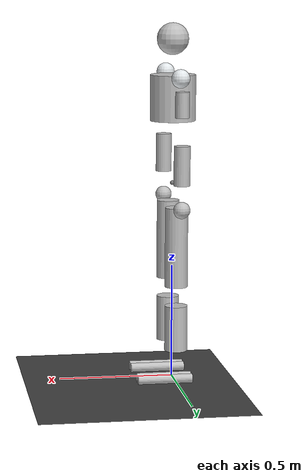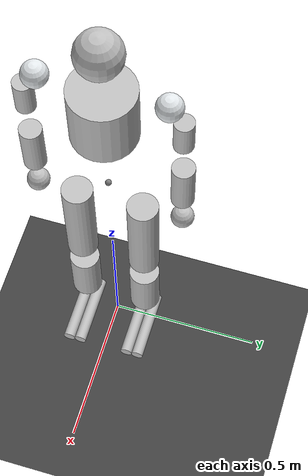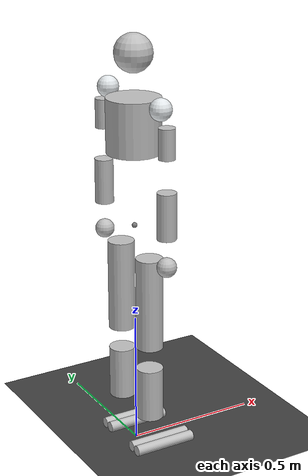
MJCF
<mujoco model="GR1T2">
  <compiler inertiafromgeom='auto' angle='radian' eulerseq='zyx' meshdir='../meshes/'/>
  <size nuser_actuator='1' nuser_sensor='1' nuser_geom='1'/>
  <option timestep='0.001' iterations='100' tolerance="1e-8" solver="Newton" integrator="RK4" gravity='0 0 -9.81'>
     <flag contact="enable" energy="enable"/>
  </option>

  <default>
    <joint limited="true"/>
    <motor ctrllimited="true"/>
    <geom contype="0" conaffinity="0" condim="1" solref="0.005 1"/>
    <equality solref="0.005 1"/>
  </default>

  <visual>
    <quality shadowsize='4096'/>
    <map znear='0.05'/>
  </visual>

  <asset>
    <texture type='skybox' builtin='gradient' width='128' height='128' rgb1='0.4 0.6 0.8' rgb2='0 0 0'/>
    <texture name='plane' type='2d' builtin='checker' rgb1='0.2 0.2 0.2' rgb2='0.3 0.3 0.3' width='512' height='512'/>
    <material name='plane' reflectance='0.0' texture='plane' texrepeat='1 1' texuniform='true'/>
    <material name='collision' rgba='0.1 0.5 0.9 0'/>
    <material name='obstacle'  rgba='0.2 0.6 0.2 1'/>

    <texture name="body" type="cube" builtin="flat" mark="cross" width="128" height="128" rgb1="0.8 0.6 0.4" rgb2="0.8 0.6 0.4" markrgb="1 1 1"/>
    <material name="body" texture="body" texuniform="true" rgba="0.8 0.6 .4 1"/>
    <texture name="grid" type="2d" builtin="checker" width="512" height="512" rgb1=".1 .2 .3" rgb2=".2 .3 .4"/>
    <material name="grid" texture="grid" texrepeat="1 1" texuniform="true" reflectance=".2"/>
  </asset>

  <worldbody>
    <geom name='floor' pos='0.001 0 0' size='100 10 .125' type='plane' material='plane' condim='3' contype="15" conaffinity='15' solref="0.005 1"/>
    <light mode='trackcom' pos='0 0 8' dir='0 0 -1'/>
    <light directional='true' pos='0 0 3' dir='0 0 -1' diffuse='0.2 0.2 0.2' specular='0 0 0'/>

    <body name="base" pos="0 0 0.95" euler="0 0 0">
      <inertial pos="-0.048532 -0.00089322 -0.032851"  mass="4.9859"  fullinertia="0.045749  0.016772 0.048814 -0.00020848 -0.0025121 -4.364E-05"/>
      <freejoint name="float_base" />
      <site name='imu' size='0.01' pos='0 0 -0.08'/>

      <body name="link_waist_yaw" pos="0 0 0.0065">
      <inertial pos="-0.0002672 -0.00030253 0.22367" quat="0.999997 -0.00125374 0.00212257 0.000400213" mass="20.0826" diaginertia="1.11997 0.742908 0.425224"/>
      <geom size="0.1 0.1" pos="0 0 0.288" type="cylinder" rgba="0.75294 0.75294 0.75294 1"/>
      <geom size="0.04" pos="0 0.187346 0.385574" rgba="0.89804 0.91765 0.92941 1"/>
      <geom size="0.03 0.055" pos="0 0.227728 0.278342" type="cylinder" rgba="0.75294 0.75294 0.75294 1"/>
      <geom size="0.035 0.085" pos="0 0.229282 0.0190936" type="cylinder" rgba="0.75294 0.75294 0.75294 1"/>
      <geom size="0.036" pos="0 0.230619 -0.171986" rgba="0.75294 0.75294 0.75294 1"/>
      <geom size="0.04" pos="0 -0.187346 0.385574" rgba="0.89804 0.91765 0.92941 1"/>
      <geom size="0.03 0.055" pos="0 -0.227346 0.278074" type="cylinder" rgba="0.75294 0.75294 0.75294 1"/>
      <geom size="0.035 0.085" pos="0 -0.227376 0.019044" type="cylinder" rgba="0.75294 0.75294 0.75294 1"/>
      <geom size="0.036" pos="0 -0.227376 -0.17204" rgba="0.75294 0.75294 0.75294 1"/>
      <geom size="0.07" pos="0.001 -0.000225513 0.543" rgba="0.75294 0.75294 0.75294 1"/>
      </body>
      <body name="l_thigh_roll" pos="-0.048 0.105 -0.0575">
        <inertial pos="0.042108 5.3388e-05 0.0025561" quat="0.000951199 0.75733 0.00226652 0.653028" mass="1.24084" diaginertia="0.00139721 0.00109616 0.000971712"/>
        <joint name="l_hip_roll" pos="0 0 0" axis="1 0 0" range="-0.09 0.79"/>
        <body name="l_thigh_yaw" pos="0.048 0 -0.0305">
          <inertial pos="-0.00036975 0.048008 -0.10263" quat="0.703435 0.0400874 -0.0739438 0.705766" mass="3.9947" diaginertia="0.0141906 0.00974878 0.00712104"/>
          <joint name="l_hip_yaw" pos="0 0 0" axis="0 0 1" range="-0.7 0.7"/>
          <body name="l_thigh_pitch" pos="0 0 -0.11">
            <inertial pos="0.0023293 -0.018978 -0.09346" quat="0.709706 0.0401023 -0.0585618 0.700914" mass="6.1575" diaginertia="0.0860379 0.0814364 0.0141615"/>
            <joint name="l_hip_pitch" pos="0 0 0" axis="0 1 0" range="-1.75 0.7"/>
            <geom size="0.05 0.175" pos="0 0 -0.15" type="cylinder" rgba="0.75294 0.75294 0.75294 1"/>
            <body name="l_shank_pitch" pos="0 0 -0.359995">
              <inertial pos="0.0026504 0.0058504 -0.12267" quat="0.668844 0.0129955 -0.000303131 0.743289" mass="2.4196" diaginertia="0.0211876 0.0209532 0.00159024"/>
              <joint name="l_knee_pitch" pos="0 0 0" axis="0 1 0" range="-0.09 1.92"/>
              <geom size="0.05 0.1" pos="0 0 -0.15" type="cylinder" rgba="0.75294 0.75294 0.75294 1"/>
              <body name="l_foot_pitch" pos="0 0 -0.34">
                <inertial pos="-1.2374e-08 -1.3607e-08 0" quat="0.707107 0.707107 0 0" mass="0.049737" diaginertia="5.2e-06 4.41e-06 3.71e-06"/>
                <joint name="l_ankle_pitch" pos="0 0 0" axis="0 1 0" range="-1.05 0.52"/>
                <body name="l_foot_roll">
                  <inertial pos="0.035077 0.00026914 -0.036774" quat="7.10825e-05 0.726356 -2.08931e-05 0.687319" mass="0.591221" diaginertia="0.00282255 0.00258496 0.000391055"/>
                  <joint name="l_ankle_roll" pos="0 0 0" axis="1 0 0" range="-0.44 0.44"/>
                  <geom name="l_foot_1" size="0.02 0.12" pos="0.05 0.02 -0.035" quat="0.707105 0 0.707108 0" type="cylinder" rgba="0.75294 0.75294 0.75294 1" contype="1"/>
                  <geom name="l_foot_2" size="0.02 0.12" pos="0.05 -0.02 -0.035" quat="0.707105 0 0.707108 0" type="cylinder" rgba="0.75294 0.75294 0.75294 1" contype="1"/>
                </body>
              </body>
            </body>
          </body>
        </body>
      </body>
      <body name="r_thigh_roll" pos="-0.048 -0.105 -0.0575">
        <inertial pos="0.042109 -5.244e-05 0.0025563" quat="-0.000958227 0.757316 -0.00228287 0.653044" mass="1.2408" diaginertia="0.00139725 0.00109626 0.000971768"/>
        <joint name="r_hip_roll" pos="0 0 0" axis="1 0 0" range="-0.79 0.09"/>
        <body name="r_thigh_yaw" pos="0.048 0 -0.0305">
          <inertial pos="-0.000369 -0.048008 -0.10263" quat="0.705764 -0.0739587 0.0400772 0.703435" mass="3.9947" diaginertia="0.0141904 0.00974868 0.00712096"/>
          <joint name="r_hip_yaw" pos="0 0 0" axis="0 0 1" range="-0.7 0.7"/>
          <body name="r_thigh_pitch" pos="0 0 -0.11">
            <inertial pos="0.0023609 0.019072 -0.093254" quat="0.70026 -0.0586384 0.040433 0.710326" mass="6.1575" diaginertia="0.0861752 0.0815583 0.0142018"/>
            <joint name="r_hip_pitch" pos="0 0 0" axis="0 1 0" range="-1.75 0.7"/>
            <geom size="0.05 0.175" pos="0 0 -0.15" type="cylinder" rgba="0.75294 0.75294 0.75294 1"/>
            <body name="r_shank_pitch" pos="0 0 -0.359995">
              <inertial pos="0.0026636 -0.0058849 -0.12251" quat="0.742943 -0.000565827 0.013187 0.669224" mass="2.4196" diaginertia="0.0211282 0.0208909 0.00158776"/>
              <joint name="r_knee_pitch" pos="0 0 0" axis="0 1 0" range="-0.09 1.92"/>
              <geom size="0.05 0.1" pos="0 0 -0.15" type="cylinder" rgba="0.75294 0.75294 0.75294 1"/>
              <body name="r_foot_pitch" pos="0 0 -0.34">
                <inertial pos="-1.2374e-08 1.3607e-08 -2.1195e-10" quat="0.707107 0.707107 0 0" mass="0.049737" diaginertia="5.2e-06 4.41e-06 3.71e-06"/>
                <joint name="r_ankle_pitch" pos="0 0 0" axis="0 1 0" range="-1.05 0.52"/>
                <body name="r_foot_roll">
                  <inertial pos="0.035078 -0.00026903 -0.036775" quat="-8.08951e-05 0.726358 2.37681e-05 0.687317" mass="0.59122" diaginertia="0.00282244 0.00258489 0.000391023"/>
                  <joint name="r_ankle_roll" pos="0 0 0" axis="1 0 0" range="-0.44 0.44"/>
                  <geom name="r_foot_1" size="0.02 0.12" pos="0.05 0.02 -0.035" quat="0.707105 0 0.707108 0" type="cylinder" rgba="0.75294 0.75294 0.75294 1" contype="1"/>
                  <geom name="r_foot_2" size="0.02 0.12" pos="0.05 -0.02 -0.035" quat="0.707105 0 0.707108 0" type="cylinder" rgba="0.75294 0.75294 0.75294 1" contype="1"/>
                </body>
              </body>
            </body>
          </body>
        </body>
      </body>
    </body>
  </worldbody>

  <!-- Actuators (Force control) -->
  <actuator>
    <!-- Left Leg Actuators -->
    <motor name="left_hip_roll_joint" joint="l_hip_roll" gear='1' ctrllimited="true" ctrlrange="-200 200"/>
    <motor name="left_hip_yaw_joint" joint='l_hip_yaw' gear='1' ctrllimited="true" ctrlrange="-200 200"/>
    <motor name="left_hip_pitch_joint" joint='l_hip_pitch' gear='1' ctrllimited="true" ctrlrange="-200 200"/>
    <motor name="left_knee_pitch_joint" joint='l_knee_pitch' gear='1' ctrllimited="true" ctrlrange="-200 200"/>
    <motor name="left_ankle_pitch_joint" joint='l_ankle_pitch' gear='1' ctrllimited="true" ctrlrange="-200 200"/>
    <motor name="left_ankle_roll_joint" joint='l_ankle_roll' gear='1' ctrllimited="true" ctrlrange="-200 200"/>
    <!-- Right Leg Actuators -->
    <motor name="right_hip_roll_joint" joint="r_hip_pitch" gear='1' ctrllimited="true" ctrlrange="-200 200"/>
    <motor name="right_hip_yaw_joint" joint="r_hip_yaw" gear='1' ctrllimited="true" ctrlrange="-200 200"/>
    <motor name="right_hip_pitch_joint" joint="r_hip_pitch" gear='1' ctrllimited="true" ctrlrange="-200 200"/>
    <motor name="right_knee_pitch_joint" joint="r_knee_pitch" gear='1' ctrllimited="true" ctrlrange="-200 200"/>
    <motor name="right_ankle_pitch_joint" joint="r_ankle_pitch" gear='1' ctrllimited="true" ctrlrange="-200 200"/>
    <motor name="right_ankle_roll_joint" joint="r_ankle_roll" gear='1' ctrllimited="true" ctrlrange="-200 200"/>
  </actuator>
  <sensor>
    <!-- IMU Sensor -->
    <framequat name="orientation" objtype="site" objname="imu" noise="0.001" />
    <framepos name="position" objtype="site" objname="imu" noise="0.001" />
    <gyro name="angular-velocity" site="imu" noise="0.005" cutoff="34.9" />
    <velocimeter name="linear-velocity" site="imu" noise="0.001" cutoff="30" />
    <accelerometer name="linear-acceleration" site="imu" noise="0.005" cutoff="157" />
    <magnetometer name="magnetometer" site="imu" />
  </sensor>
</mujoco>
